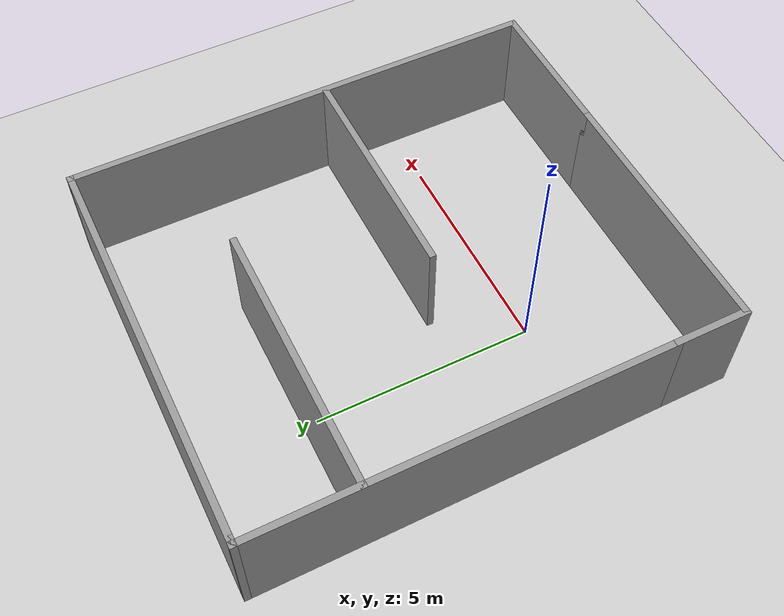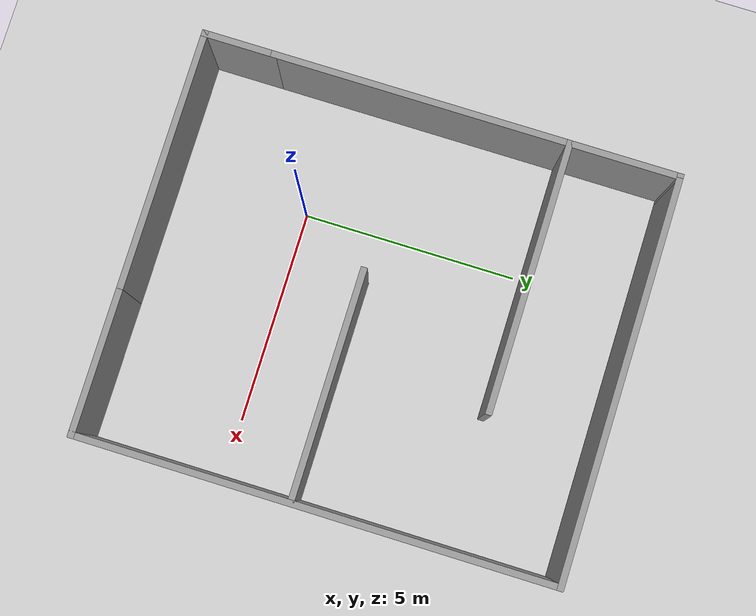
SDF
<?xml version="1.0"?>
<sdf version="1.6">
  <world name="default">

    <include>
      <uri>model://ground_plane</uri>
    </include>

    <include>
      <uri>model://sun</uri>
    </include>

    <scene>
      <shadows>false</shadows>
    </scene>

    <gui fullscreen='0'>
      <camera name='user_camera'>
        <pose frame=''>0.319654 -0.235002 9.29441 0 1.5138 0.009599</pose>
        <view_controller>orbit</view_controller>
        <projection_type>perspective</projection_type>
      </camera>
    </gui>

    <physics type="ode">
      <real_time_update_rate>1000.0</real_time_update_rate>
      <max_step_size>0.001</max_step_size>
      <real_time_factor>1</real_time_factor>
      <ode>
        <solver>
          <type>quick</type>
          <iters>150</iters>
          <precon_iters>0</precon_iters>
          <sor>1.400000</sor>
          <use_dynamic_moi_rescaling>1</use_dynamic_moi_rescaling>
        </solver>
        <constraints>
          <cfm>0.00001</cfm>
          <erp>0.2</erp>
          <contact_max_correcting_vel>2000.000000</contact_max_correcting_vel>
          <contact_surface_layer>0.01000</contact_surface_layer>
        </constraints>
      </ode>
    </physics>

    <model name="maze">
      <static>1</static>
      <include>
        <uri>model://maze</uri>
      </include>
    </model>
  </world>
</sdf>

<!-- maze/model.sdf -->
<sdf version='1.7'>
  <model name='maze'>
    <pose>1.79 2.305 0 0 -0 0</pose>
    <link name='Wall_0'>
      <collision name='Wall_0_Collision'>
        <geometry>
          <box>
            <size>1.75 0.15 2.5</size>
          </box>
        </geometry>
        <pose>0 0 1.25 0 -0 0</pose>
      </collision>
      <visual name='Wall_0_Visual'>
        <pose>0 0 1.25 0 -0 0</pose>
        <geometry>
          <box>
            <size>1.75 0.15 2.5</size>
          </box>
        </geometry>
        <material>
          <script>
            <uri>file://media/materials/scripts/gazebo.material</uri>
            <name>Gazebo/Grey</name>
          </script>
          <ambient>1 1 1 1</ambient>
        </material>
        <meta>
          <layer>0</layer>
        </meta>
      </visual>
      <pose>-4.6 -4.625 0 0 -0 -1.5708</pose>
    </link>
    <link name='Wall_1'>
      <collision name='Wall_1_Collision'>
        <geometry>
          <box>
            <size>6 0.15 2.5</size>
          </box>
        </geometry>
        <pose>0 0 1.25 0 -0 0</pose>
      </collision>
      <visual name='Wall_1_Visual'>
        <pose>0 0 1.25 0 -0 0</pose>
        <geometry>
          <box>
            <size>6 0.15 2.5</size>
          </box>
        </geometry>
        <material>
          <script>
            <uri>file://media/materials/scripts/gazebo.material</uri>
            <name>Gazebo/Grey</name>
          </script>
          <ambient>1 1 1 1</ambient>
        </material>
        <meta>
          <layer>0</layer>
        </meta>
      </visual>
      <pose>-1.675 -5.425 0 0 -0 0</pose>
    </link>
    <link name='Wall_11'>
      <collision name='Wall_11_Collision'>
        <geometry>
          <box>
            <size>6.25 0.15 2.5</size>
          </box>
        </geometry>
        <pose>0 0 1.25 0 -0 0</pose>
      </collision>
      <visual name='Wall_11_Visual'>
        <pose>0 0 1.25 0 -0 0</pose>
        <geometry>
          <box>
            <size>6.25 0.15 2.5</size>
          </box>
        </geometry>
        <material>
          <script>
            <uri>file://media/materials/scripts/gazebo.material</uri>
            <name>Gazebo/Grey</name>
          </script>
          <ambient>1 1 1 1</ambient>
        </material>
        <meta>
          <layer>0</layer>
        </meta>
      </visual>
      <pose>-1.54942 2.92825 0 0 -0 0</pose>
    </link>
    <link name='Wall_13'>
      <collision name='Wall_13_Collision'>
        <geometry>
          <box>
            <size>5.25 0.15 2.5</size>
          </box>
        </geometry>
        <pose>0 0 1.25 0 -0 0</pose>
      </collision>
      <visual name='Wall_13_Visual'>
        <pose>0 0 1.25 0 -0 0</pose>
        <geometry>
          <box>
            <size>5.25 0.15 2.5</size>
          </box>
        </geometry>
        <material>
          <script>
            <uri>file://media/materials/scripts/gazebo.material</uri>
            <name>Gazebo/Grey</name>
          </script>
          <ambient>1 1 1 1</ambient>
        </material>
        <meta>
          <layer>0</layer>
        </meta>
      </visual>
      <pose>1.94541 -0.534779 0 0 -0 3.14159</pose>
    </link>
    <link name='Wall_5'>
      <collision name='Wall_5_Collision'>
        <geometry>
          <box>
            <size>3.5 0.15 2.5</size>
          </box>
        </geometry>
        <pose>0 0 1.25 0 -0 0</pose>
      </collision>
      <visual name='Wall_5_Visual'>
        <pose>0 0 1.25 0 -0 0</pose>
        <geometry>
          <box>
            <size>3.5 0.15 2.5</size>
          </box>
        </geometry>
        <material>
          <script>
            <uri>file://media/materials/scripts/gazebo.material</uri>
            <name>Gazebo/Grey</name>
          </script>
          <ambient>1 1 1 1</ambient>
        </material>
        <meta>
          <layer>0</layer>
        </meta>
      </visual>
      <pose>2.925 -5.425 0 0 -0 0</pose>
    </link>
    <link name='Wall_6'>
      <collision name='Wall_6_Collision'>
        <geometry>
          <box>
            <size>11 0.15 2.5</size>
          </box>
        </geometry>
        <pose>0 0 1.25 0 -0 0</pose>
      </collision>
      <visual name='Wall_6_Visual'>
        <pose>0 0 1.25 0 -0 0</pose>
        <geometry>
          <box>
            <size>11 0.15 2.5</size>
          </box>
        </geometry>
        <material>
          <script>
            <uri>file://media/materials/scripts/gazebo.material</uri>
            <name>Gazebo/Grey</name>
          </script>
          <ambient>1 1 1 1</ambient>
        </material>
        <meta>
          <layer>0</layer>
        </meta>
      </visual>
      <pose>4.6 0 0 0 -0 1.5708</pose>
    </link>
    <link name='Wall_7'>
      <collision name='Wall_7_Collision'>
        <geometry>
          <box>
            <size>9.25 0.15 2.5</size>
          </box>
        </geometry>
        <pose>0 0 1.25 0 -0 0</pose>
      </collision>
      <visual name='Wall_7_Visual'>
        <pose>0 0 1.25 0 -0 0</pose>
        <geometry>
          <box>
            <size>9.25 0.15 2.5</size>
          </box>
        </geometry>
        <material>
          <script>
            <uri>file://media/materials/scripts/gazebo.material</uri>
            <name>Gazebo/Grey</name>
          </script>
          <ambient>1 1 1 1</ambient>
        </material>
        <meta>
          <layer>0</layer>
        </meta>
      </visual>
      <pose>0.05 5.425 0 0 -0 3.14159</pose>
    </link>
    <link name='Wall_8'>
      <collision name='Wall_8_Collision'>
        <geometry>
          <box>
            <size>0.25 0.15 2.5</size>
          </box>
        </geometry>
        <pose>0 0 1.25 0 -0 0</pose>
      </collision>
      <visual name='Wall_8_Visual'>
        <pose>0 0 1.25 0 -0 0</pose>
        <geometry>
          <box>
            <size>0.25 0.15 2.5</size>
          </box>
        </geometry>
        <material>
          <script>
            <uri>file://media/materials/scripts/gazebo.material</uri>
            <name>Gazebo/Grey</name>
          </script>
          <ambient>1 1 1 1</ambient>
        </material>
        <meta>
          <layer>0</layer>
        </meta>
      </visual>
      <pose>-4.55 5.425 0 0 -0 3.14159</pose>
    </link>
    <link name='Wall_9'>
      <collision name='Wall_9_Collision'>
        <geometry>
          <box>
            <size>9.4 0.15 2.5</size>
          </box>
        </geometry>
        <pose>0 0 1.25 0 -0 0</pose>
      </collision>
      <visual name='Wall_9_Visual'>
        <pose>0 0 1.25 0 -0 0</pose>
        <geometry>
          <box>
            <size>9.4 0.15 2.5</size>
          </box>
        </geometry>
        <material>
          <script>
            <uri>file://media/materials/scripts/gazebo.material</uri>
            <name>Gazebo/Grey</name>
          </script>
          <ambient>1 1 1 1</ambient>
        </material>
        <meta>
          <layer>0</layer>
        </meta>
      </visual>
      <pose>-4.6 0.8 0 0 -0 -1.5708</pose>
    </link>
    <static>1</static>
  </model>
</sdf>
